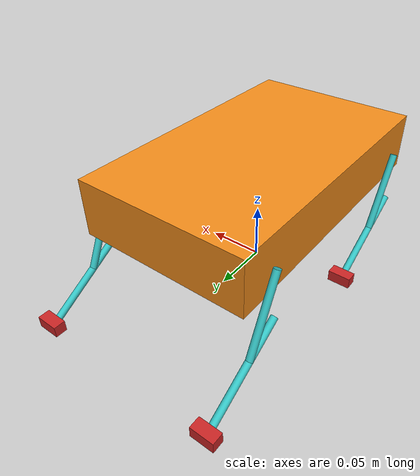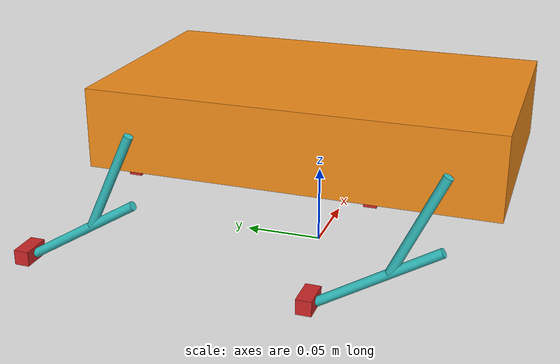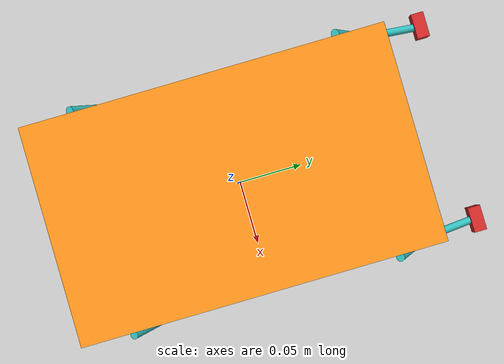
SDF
<?xml version="1.0" ?>
<sdf version="1.4">
    <world name="default">

        <physics type="ode">
            <gravity>0.000000 0.000000 -10.000000</gravity>
            <ode>
                <solver>
                    <type>quick</type>
                    <iters>50</iters>
                    <precon_iters>0</precon_iters>
                    <sor>1.300000</sor>
                </solver>
                <constraints>
                    <cfm>0.000000</cfm>
                    <erp>0.200000</erp>
                    <contact_max_correcting_vel>100.000000</contact_max_correcting_vel>
                    <contact_surface_layer>0.001000</contact_surface_layer>
                </constraints>
            </ode>
            <real_time_update_rate>0.000000</real_time_update_rate>
            <max_step_size>0.001000</max_step_size>
        </physics>

        <model name="gplane">
            <pose>0.000000 0.000000 0.000000 0.000000 -0.000000 0.000000</pose>
            <link name="plane">
                <pose>0.000000 0.000000 0.000000 0.000000 -0.000000 0.000000</pose>
                <collision name="plane">
                    <pose>0.000000 0.000000 0.000000 0.000000 -0.000000 0.000000</pose>
                    <geometry>
                        <plane>
                            <normal>0.000000 0.000000 1.000000</normal>
                        </plane>
                    </geometry>
                    <surface>
                        <friction>
                            <ode>
                                <mu>50.000000</mu>
                                <mu2>50.000000</mu2>
                                <fdir1>0.000000 0.000000 0.000000</fdir1>
                                <slip1>0.000000</slip1>
                                <slip2>0.000000</slip2>
                            </ode>
                        </friction>
                        <bounce>
                            <restitution_coefficient>0.000000</restitution_coefficient>
                            <threshold>100000.000000</threshold>
                        </bounce>
                        <contact>
                            <ode>
                                <soft_cfm>0.000000</soft_cfm>
                                <soft_erp>0.200000</soft_erp>
                                <kp>1000000000.000000</kp>
                                <kd>1.000000</kd>
                                <max_vel>100.000000</max_vel>
                                <min_depth>0.001000</min_depth>
                            </ode>
                        </contact>
                    </surface>
                    <laser_retro>0.000000</laser_retro>
                </collision>
                <gravity>1</gravity>
                <self_collide>0</self_collide>
                <kinematic>0</kinematic>
            </link>
            <static>1</static>
        </model>

        <!-- The tigrillo robot -->
        <model name="tigrillo_feet">
            <include>
                <uri>model://tigrillo_feet</uri>
            </include>
        </model>

    </world>
</sdf>

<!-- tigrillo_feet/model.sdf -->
<sdf version="1.4">
	<model name="tigrillo_feet">
		<static>false</static>

		<!-- Create the solid for body-->
		<link name="body">

			<pose>0 0 0.08952 0 0 0 </pose>

			<!-- All mass and inertial features -->
			<inertial>
				<mass>1.0</mass>
				<inertia>
					<ixx>0.002167</ixx>
					<ixy>0.0</ixy>
					<ixz>0.0</ixz>
					<iyy>0.000833</iyy>
					<iyz>0.0</iyz>
					<izz>0.002833</izz>
				</inertia>
			</inertial>

			<!-- Geometric features for collision of main body -->
			<collision name="body_col">
				<geometry>
					<box>
						<size>0.15 0.25 0.05</size>
					</box>
				</geometry>
			</collision>

			<!-- Geometric and texture features for visuals of main body-->
			<visual name="body_vis">
				<geometry>
					<box>
						<size>0.15 0.25 0.05</size>
					</box>
				</geometry>
        <material>
          <script>
            <uri>file://media/materials/scripts/gazebo.material</uri>
            <name>Gazebo/Orange</name>
          </script>
        </material>
			</visual>

		</link>

		<!-- Solid for the right humerus -->
		<link name="right_humerus">

			<pose>0.08 0.10979 0.0578 0.4363 0 0</pose>

			<inertial>
				<mass>0.1</mass>
				<inertia>
					<ixx>0.0000411</ixx>
					<ixy>0.0</ixy>
					<ixz>0.0</ixz>
					<iyy>0.0000411</iyy>
					<iyz>0.0</iyz>
					<izz>0.00000045</izz>
				</inertia>
			</inertial>

			<collision name="col">
				<geometry>
					<cylinder>
						<radius>.003</radius>
						<length>0.07</length>
					</cylinder>
				</geometry>
			</collision>

			<visual name="vis">
				<geometry>
					<cylinder>
						<radius>.003</radius>
						<length>0.07</length>
					</cylinder>
				</geometry>
				<material>
				  <script>
				    <uri>file://media/materials/scripts/gazebo.material</uri>
				    <name>Gazebo/Turquoise</name>
				  </script>
				</material>
			</visual>
		</link>

		<!-- Solid for the right radius -->
		<link name="right_radius">

			<pose>0.08 0.13098 0.02217 1.022 0 0</pose>

			<inertial>
				<mass>0.1</mass>
				<inertia>
					<ixx>0.0000411</ixx>
					<ixy>0.0</ixy>
					<ixz>0.0</ixz>
					<iyy>0.0000411</iyy>
					<iyz>0.0</iyz>
					<izz>0.00000045</izz>
				</inertia>
			</inertial>

			<collision name="col_rad">
				<geometry>
					<cylinder>
						<radius>.003</radius>
						<length>0.085</length>
					</cylinder>
				</geometry>
				<surface>
					<friction>
						<ode>
							<mu>1</mu>
							<mu2>1</mu2>
						</ode>
						<bullet>
							<friction>1</friction>
							<friction2>1</friction2>
						</bullet>
					</friction>
				</surface>
			</collision>

			<visual name="vis_rad">
				<geometry>
					<cylinder>
						<radius>.003</radius>
						<length>0.085</length>
					</cylinder>
				</geometry>
				<material>
				  <script>
				    <uri>file://media/materials/scripts/gazebo.material</uri>
				    <name>Gazebo/Turquoise</name>
				  </script>
				</material>
			</visual>

			<collision name="col_foot">
				<pose>0 0.00261 -0.04676 0.5488 0 0</pose>
				<geometry>
					<box>
						<size>0.02 0.01 0.01</size>
					</box>
				</geometry>
				<surface>
					<friction>
						<ode>
							<mu>20000</mu>
							<mu2>20000</mu2>
						</ode>
						<bullet>
							<friction>2</friction>
							<friction2>2</friction2>
						</bullet>
					</friction>
					<contact>
					  <ode><min_depth>0.003</min_depth></ode>
					</contact>
				</surface>
			</collision>

			<visual name="vis_foot">
				<pose>0 0.00261 -0.04676 0.5488 0 0</pose>
				<geometry>
					<box>
						<size>0.02 0.01 0.01</size>
					</box>
				</geometry>
				<material>
				  <script>
				    <uri>file://media/materials/scripts/gazebo.material</uri>
				    <name>Gazebo/Red</name>
				  </script>
				</material>
			</visual>
		</link>

		<!-- Solid for the left humerus -->
		<link name="left_humerus">

			<pose>-0.08 0.10979 0.0578 0.4363 0 0</pose>

			<inertial>
				<mass>0.1</mass>
				<inertia>
					<ixx>0.0000411</ixx>
					<ixy>0.0</ixy>
					<ixz>0.0</ixz>
					<iyy>0.0000411</iyy>
					<iyz>0.0</iyz>
					<izz>0.00000045</izz>
				</inertia>
			</inertial>

			<collision name="col">
				<geometry>
					<cylinder>
						<radius>.003</radius>
						<length>0.07</length>
					</cylinder>
				</geometry>
			</collision>

			<visual name="vis">
				<geometry>
					<cylinder>
						<radius>.003</radius>
						<length>0.07</length>
					</cylinder>
				</geometry>
				<material>
				  <script>
				    <uri>file://media/materials/scripts/gazebo.material</uri>
				    <name>Gazebo/Turquoise</name>
				  </script>
				</material>
			</visual>
		</link>

		<!-- Solid for the left radius -->
		<link name="left_radius">

			<pose>-0.08 0.13098 0.02217 1.022 0 0</pose>

			<inertial>
				<mass>0.1</mass>
				<inertia>
					<ixx>0.0000411</ixx>
					<ixy>0.0</ixy>
					<ixz>0.0</ixz>
					<iyy>0.0000411</iyy>
					<iyz>0.0</iyz>
					<izz>0.00000045</izz>
				</inertia>
			</inertial>

			<collision name="col_rad">
				<geometry>
					<cylinder>
						<radius>.003</radius>
						<length>0.085</length>
					</cylinder>
				</geometry>
				<surface>
					<friction>
						<ode>
							<mu>1</mu>
							<mu2>1</mu2>
						</ode>
						<bullet>
							<friction>1</friction>
							<friction2>1</friction2>
						</bullet>
					</friction>
				</surface>
			</collision>

			<visual name="vis_rad">
				<geometry>
					<cylinder>
						<radius>.003</radius>
						<length>0.085</length>
					</cylinder>
				</geometry>
				<material>
				  <script>
				    <uri>file://media/materials/scripts/gazebo.material</uri>
				    <name>Gazebo/Turquoise</name>
				  </script>
				</material>
			</visual>

			<collision name="col_foot">

				<pose>0 0.00261 -0.04676 0.5488 0 0</pose>
				<geometry>
					<box>
						<size>0.02 0.01 0.01</size>
					</box>
				</geometry>
				<surface>
					<friction>
						<ode>
							<mu>20000</mu>
							<mu2>20000</mu2>
						</ode>
						<bullet>
							<friction>2</friction>
							<friction2>2</friction2>
						</bullet>
					</friction>
					<contact>
					  <ode><min_depth>0.003</min_depth></ode>
					</contact>
				</surface>
			</collision>

			<visual name="vis_foot">
				<pose>0 0.00261 -0.04676 0.5488 0 0</pose>
				<geometry>
					<box>
						<size>0.02 0.01 0.01</size>
					</box>
				</geometry>
				<material>
				  <script>
				    <uri>file://media/materials/scripts/gazebo.material</uri>
				    <name>Gazebo/Red</name>
				  </script>
				</material>
			</visual>
		</link>

		<!-- Solid for the right femur -->
		<link name="right_femur">

			<pose>0.08 -0.08021 0.0578 0.4363 0 0</pose>

			<inertial>
				<mass>0.1</mass>
				<inertia>
					<ixx>0.0000411</ixx>
					<ixy>0.0</ixy>
					<ixz>0.0</ixz>
					<iyy>0.0000411</iyy>
					<iyz>0.0</iyz>
					<izz>0.00000045</izz>
				</inertia>
			</inertial>

			<collision name="col">
				<geometry>
					<cylinder>
						<radius>.003</radius>
						<length>0.07</length>
					</cylinder>
				</geometry>
			</collision>

			<visual name="vis">
				<geometry>
					<cylinder>
						<radius>.003</radius>
						<length>0.07</length>
					</cylinder>
				</geometry>
				<material>
				  <script>
				    <uri>file://media/materials/scripts/gazebo.material</uri>
				    <name>Gazebo/Turquoise</name>
				  </script>
				</material>
			</visual>
		</link>

		<!-- Solid for the right tibia -->
		<link name="right_tibia">

			<pose>0.08 -0.05902 0.02217 1.022 0 0</pose>

			<inertial>
				<mass>0.1</mass>
				<inertia>
					<ixx>0.0000411</ixx>
					<ixy>0.0</ixy>
					<ixz>0.0</ixz>
					<iyy>0.0000411</iyy>
					<iyz>0.0</iyz>
					<izz>0.00000045</izz>
				</inertia>
			</inertial>

			<collision name="col_tib">
				<geometry>
					<cylinder>
						<radius>.003</radius>
						<length>0.085</length>
					</cylinder>
				</geometry>
				<surface>
					<friction>
						<ode>
							<mu>2</mu>
							<mu2>2</mu2>
						</ode>
						<bullet>
							<friction>2</friction>
							<friction2>2</friction2>
						</bullet>
					</friction>
				</surface>
			</collision>

			<visual name="vis_tib">
				<geometry>
					<cylinder>
						<radius>.003</radius>
						<length>0.085</length>
					</cylinder>
				</geometry>
				<material>
				  <script>
				    <uri>file://media/materials/scripts/gazebo.material</uri>
				    <name>Gazebo/Turquoise</name>
				  </script>
				</material>
			</visual>

			<collision name="col_foot">
				<pose>0 0.00261 -0.04676 0.5488 0 0</pose>
				<geometry>
					<box>
						<size>0.02 0.01 0.01</size>
					</box>
				</geometry>
				<surface>
					<friction>
						<ode>
							<mu>20000</mu>
							<mu2>20000</mu2>
						</ode>
						<bullet>
							<friction>2</friction>
							<friction2>2</friction2>
						</bullet>
					</friction>
					<contact>
					  <ode><min_depth>0.003</min_depth></ode>
					</contact>
				</surface>
			</collision>

			<visual name="vis_foot">
				<pose>0 0.00261 -0.04676 0.5488 0 0</pose>
				<geometry>
					<box>
						<size>0.02 0.01 0.01</size>
					</box>
				</geometry>
				<material>
				  <script>
				    <uri>file://media/materials/scripts/gazebo.material</uri>
				    <name>Gazebo/Red</name>
				  </script>
				</material>
			</visual>
		</link>

		<!-- Solid for the left femur -->
		<link name="left_femur">

			<pose>-0.08 -0.08021 0.0578 0.4363 0 0</pose>

			<inertial>
				<mass>0.1</mass>
				<inertia>
					<ixx>0.0000411</ixx>
					<ixy>0.0</ixy>
					<ixz>0.0</ixz>
					<iyy>0.0000411</iyy>
					<iyz>0.0</iyz>
					<izz>0.00000045</izz>
				</inertia>
			</inertial>

			<collision name="col">
				<geometry>
					<cylinder>
						<radius>.003</radius>
						<length>0.07</length>
					</cylinder>
				</geometry>
			</collision>

			<visual name="vis">
				<geometry>
					<cylinder>
						<radius>.003</radius>
						<length>0.07</length>
					</cylinder>
				</geometry>
				<material>
				  <script>
				    <uri>file://media/materials/scripts/gazebo.material</uri>
				    <name>Gazebo/Turquoise</name>
				  </script>
				</material>
			</visual>
		</link>

		<!-- Solid for the left tibia -->
		<link name="left_tibia">

			<pose>-0.08 -0.05902 0.02217 1.022 0 0</pose>

			<inertial>
				<mass>0.1</mass>
				<inertia>
					<ixx>0.0000411</ixx>
					<ixy>0.0</ixy>
					<ixz>0.0</ixz>
					<iyy>0.0000411</iyy>
					<iyz>0.0</iyz>
					<izz>0.00000045</izz>
				</inertia>
			</inertial>

			<collision name="col_tib">
				<geometry>
					<cylinder>
						<radius>.003</radius>
						<length>0.085</length>
					</cylinder>
				</geometry>
				<surface>
					<friction>
						<ode>
							<mu>2</mu>
							<mu2>2</mu2>
						</ode>
						<bullet>
							<friction>2</friction>
							<friction2>2</friction2>
						</bullet>
					</friction>
				</surface>
			</collision>

			<visual name="vis_tib">
				<geometry>
					<cylinder>
						<radius>.003</radius>
						<length>0.085</length>
					</cylinder>
				</geometry>
				<material>
				  <script>
				    <uri>file://media/materials/scripts/gazebo.material</uri>
				    <name>Gazebo/Turquoise</name>
				  </script>
				</material>
			</visual>

			<collision name="col_foot">
				<pose>0 0.00261 -0.04676 0.5488 0 0</pose>
				<geometry>
					<box>
						<size>0.02 0.01 0.01</size>
					</box>
				</geometry>
				<surface>
					<friction>
						<ode>
							<mu>20000</mu>
							<mu2>20000</mu2>
						</ode>
						<bullet>
							<friction>2</friction>
							<friction2>2</friction2>
						</bullet>
					</friction>
					<contact>
					  <ode><min_depth>0.003</min_depth></ode>
					</contact>
				</surface>
			</collision>

			<visual name="vis_foot">
				<pose>0 0.00261 -0.04676 0.5488 0 0</pose>
				<geometry>
					<box>
						<size>0.02 0.01 0.01</size>
					</box>
				</geometry>
				<material>
				  <script>
				    <uri>file://media/materials/scripts/gazebo.material</uri>
				    <name>Gazebo/Red</name>
				  </script>
				</material>
			</visual>
		</link>

		<!-- rotation joint for the right shoulder -->
		<joint name="right_shoulder" type="revolute">
			<parent>body</parent>
			<child>right_humerus</child>
			<pose>0 0 0.035 0 0 0</pose>
			<axis>
				<xyz>1 0 0</xyz>
				<limit>
					<lower>-1.2</lower>
					<upper>1.2</upper>
				</limit>
			</axis>
		</joint>

		<!-- rotation joint for the left shoulder -->
		<joint name="left_shoulder" type="revolute">
			<parent>body</parent>
			<child>left_humerus</child>
			<pose>0 0 0.035 0 0 0</pose>
			<axis>
				<xyz>1 0 0</xyz>
				<limit>
					<lower>-1.2</lower>
					<upper>1.2</upper>
				</limit>
			</axis>
		</joint>

		<!-- rotation joint for the right hip -->
		<joint name="right_hip" type="revolute">
			<parent>body</parent>
			<child>right_femur</child>
			<pose>0 0 0.035 0 0 0</pose>
			<axis>
				<xyz>1 0 0</xyz>
				<limit>
					<lower>-1.2</lower>
					<upper>1.2</upper>
				</limit>
			</axis>
		</joint>

		<!-- rotation joint for the left hip -->
		<joint name="left_hip" type="revolute">
			<parent>body</parent>
			<child>left_femur</child>
			<pose>0 0 0.035 0 0 0</pose>
			<axis>
				<xyz>1 0 0</xyz>
				<limit>
					<lower>-1.2</lower>
					<upper>1.2</upper>
				</limit>
			</axis>
		</joint>

	<!-- rotation joint for the right elbow -->
		<joint name="right_elbow" type="revolute">
			<parent>right_humerus</parent>
			<child>right_radius</child>
			<pose>0 0 0.01 0 0 0</pose>
			<axis>
				<xyz>1 0 0</xyz>
				<dynamics>
					<damping>0.05</damping>
					<spring_stiffness>1.0</spring_stiffness>
				</dynamics>
				<limit>
					<lower>-3.0</lower>
					<upper>3.0</upper>
				</limit>
			</axis>

		</joint>

		<!-- rotation joint for the left elbow -->
		<joint name="left_elbow" type="revolute">
			<parent>left_humerus</parent>
			<child>left_radius</child>
			<pose>0 0 0.01 0 0 0</pose>
			<axis>
				<xyz>1 0 0</xyz>
				<dynamics>
					<damping>0.05</damping>
					<spring_stiffness>1.0</spring_stiffness>
				</dynamics>
				<limit>
					<lower>-3.0</lower>
					<upper>3.0</upper>
				</limit>
			</axis>

		</joint>

		<!-- rotation joint for the right knee -->
		<joint name="right_knee" type="revolute">
			<parent>right_femur</parent>
			<child>right_tibia</child>
			<pose>0 0 0.01 0 0 0</pose>
			<axis>
				<xyz>1 0 0</xyz>

				<limit>
					<lower>-3.0</lower>
					<upper>3.0</upper>
				</limit>
				<dynamics>
					<damping>0.05</damping>
					<spring_stiffness>1.0</spring_stiffness>
				</dynamics>
			</axis>

		</joint>

		<!-- rotation joint for the left knee -->
		<joint name="left_knee" type="revolute">
			<parent>left_femur</parent>
			<child>left_tibia</child>
			<pose>0 0 0.01 0 0 0</pose>
			<axis>
				<xyz>1 0 0</xyz>

				<limit>
					<lower>-3.0</lower>
					<upper>3.0</upper>
				</limit>
				<dynamics>
					<damping>0.05</damping>
					<spring_stiffness>1.0</spring_stiffness>
				</dynamics>
			</axis>

		</joint>
		<!-- Attach the plugin to this model -->
		<plugin name='TigrilloPlugin' filename='libTigrilloPlugin.so'>
			<p>1.0</p>
			<i>0.1</i>
			<d>0.01</d>
		</plugin>
    </model>
</sdf>
